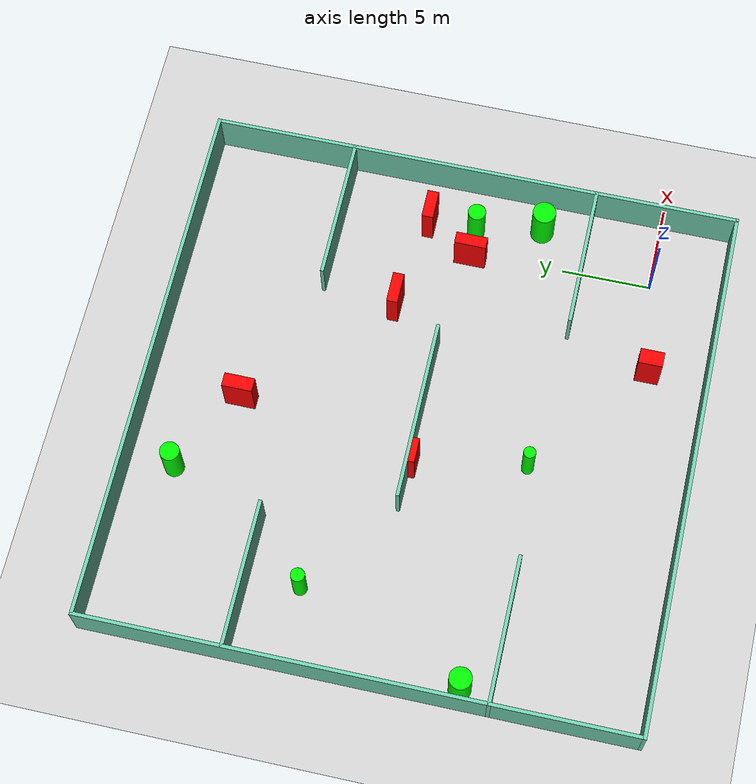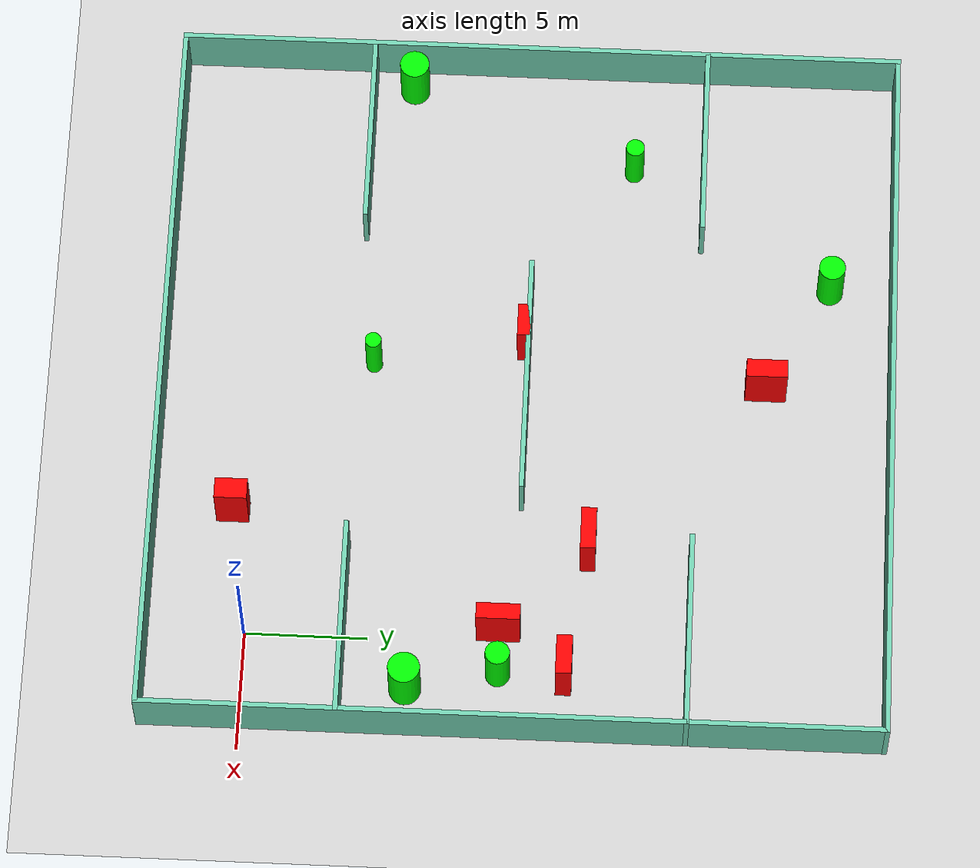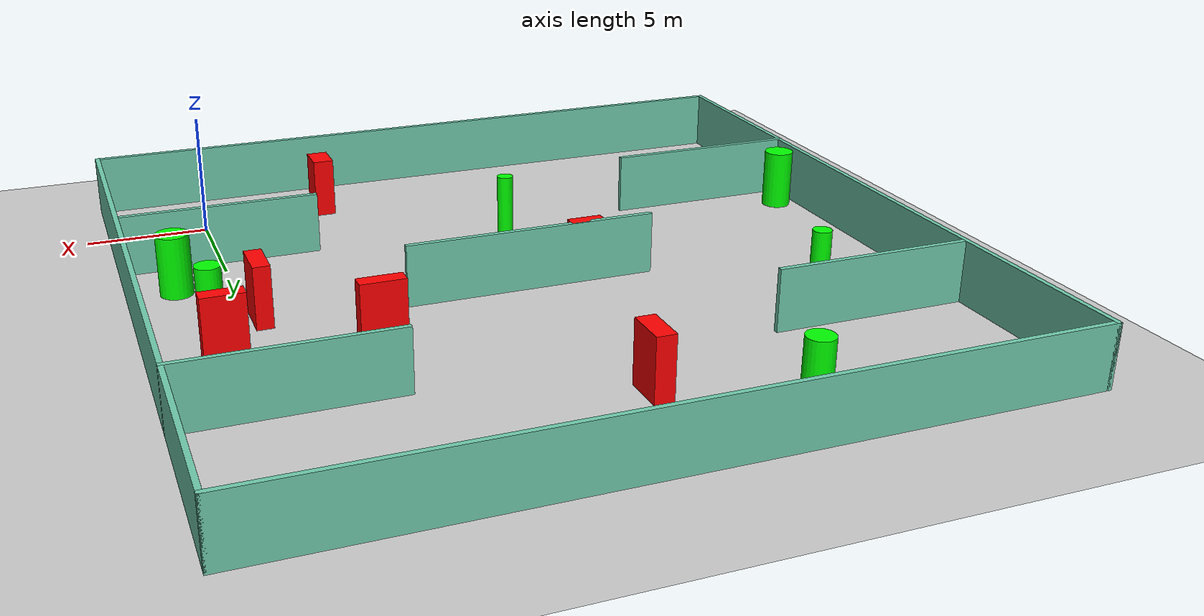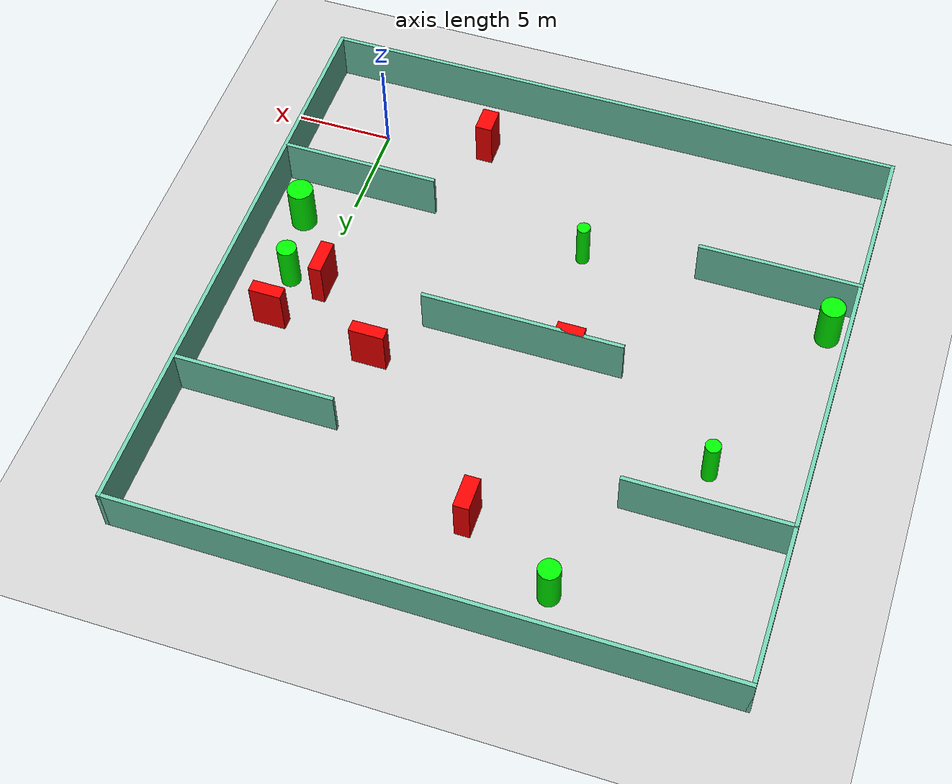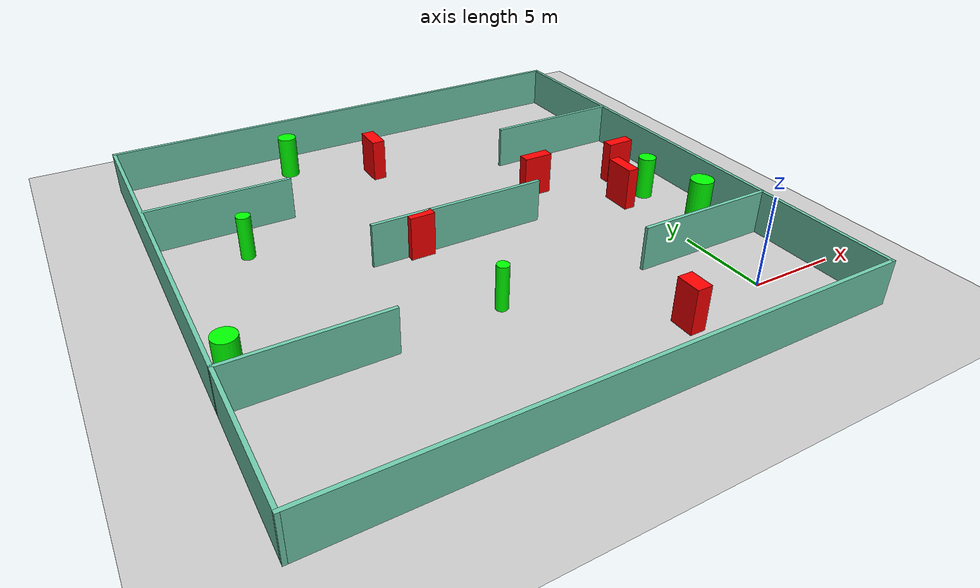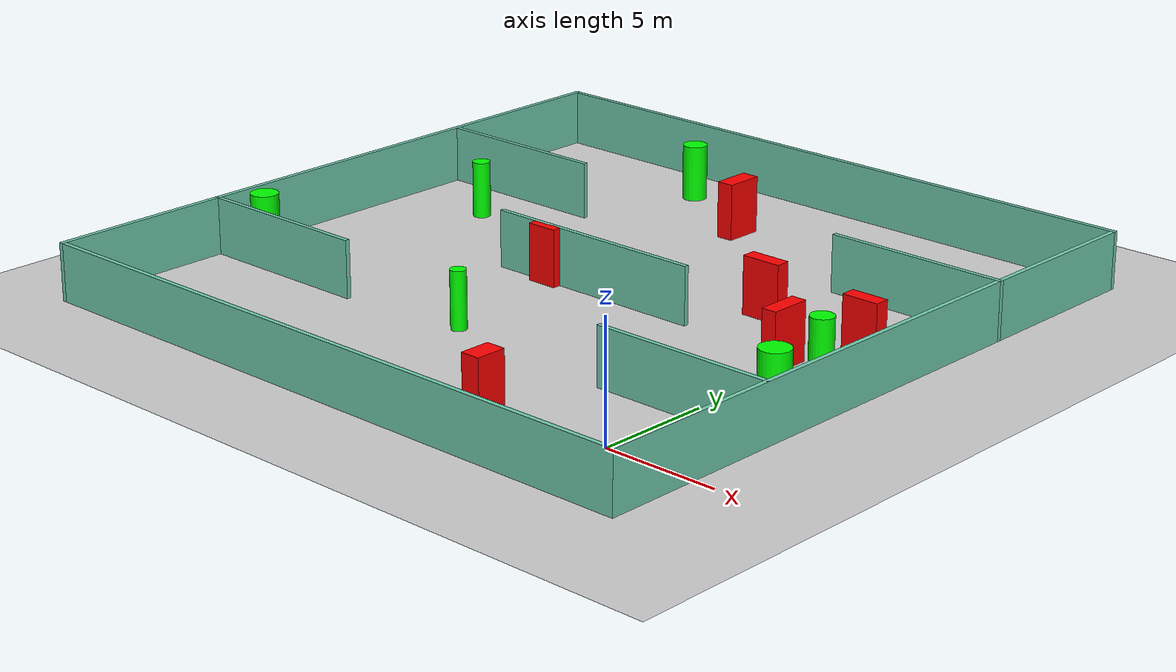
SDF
<sdf version="1.7">
 <world name="default">
  <light name="sun" type="directional">
   <pose>0 0 10 0 -0 0</pose>
   <diffuse>0.8 0.8 0.8 1</diffuse>
   <specular>0.2 0.2 0.2 1</specular>
   <attenuation>
    <range>1000</range>
    <constant>0.9</constant>
    <linear>0.01</linear>
    <quadratic>0.001</quadratic>
   </attenuation>
   <direction>-0.5 0.1 -0.9</direction>
   <spot><inner_angle>0</inner_angle><outer_angle>0</outer_angle><falloff>0</falloff></spot>
  </light>
  <model name="ground_plane">
   <static>1</static>
   <link name="link">
    <collision name="collision">
     <geometry><plane><normal>0 0 1</normal><size>100 100</size></plane></geometry>
     <surface>
      <contact><collide_bitmask>65535</collide_bitmask></contact>
      <friction><ode><mu>100</mu><mu2>50</mu2></ode></friction>
     </surface>
    </collision>
    <visual name="visual">
     <cast_shadows>0</cast_shadows>
     <geometry><plane><normal>0 0 1</normal><size>100 100</size></plane></geometry>
     <material>
      <script><uri>file://media/materials/scripts/gazebo.material</uri><name>Gazebo/Grey</name></script>
     </material>
    </visual>
   </link>
  </model>
  <gravity>0 0 -9.8</gravity>
  <magnetic_field>6e-06 2.3e-05 -4.2e-05</magnetic_field>
  <atmosphere type="adiabatic"/>
  <physics type="ode">
   <max_step_size>0.001</max_step_size>
   <real_time_factor>1</real_time_factor>
   <real_time_update_rate>1000</real_time_update_rate>
  </physics>
  <scene><ambient>0.4 0.4 0.4 1</ambient><background>0.7 0.7 0.7 1</background><shadows>1</shadows></scene>
  <spherical_coordinates>
   <surface_model>EARTH_WGS84</surface_model>
   <latitude_deg>0</latitude_deg>
   <longitude_deg>0</longitude_deg>
   <elevation>0</elevation>
   <heading_deg>0</heading_deg>
  </spherical_coordinates>
  <model name="my_base_walls">
   <link name="Wall_10">
    <collision name="Wall_10_Collision">
     <geometry><box><size>8.2 0.2 2.5</size></box></geometry>
     <pose>0 0 1.25 0 -0 0</pose>
    </collision>
    <visual name="Wall_10_Visual">
     <pose>0 0 1.25 0 -0 0</pose>
     <geometry><box><size>8.2 0.2 2.5</size></box></geometry>
     <material>
      <script><uri>file://media/materials/scripts/gazebo.material</uri><name>Gazebo/Grey</name></script>
      <ambient>0.435294 0.796078 0.67451 1</ambient>
     </material>
     <meta><layer>0</layer></meta>
    </visual>
    <pose>-11 -7 0 0 -0 0</pose>
   </link>
   <link name="Wall_12">
    <collision name="Wall_12_Collision">
     <geometry><box><size>8.2 0.2 2.5</size></box></geometry>
     <pose>0 0 1.25 0 -0 0</pose>
    </collision>
    <visual name="Wall_12_Visual">
     <pose>0 0 1.25 0 -0 0</pose>
     <geometry><box><size>8.2 0.2 2.5</size></box></geometry>
     <material>
      <script><uri>file://media/materials/scripts/gazebo.material</uri><name>Gazebo/Grey</name></script>
      <ambient>0.435294 0.796078 0.67451 1</ambient>
     </material>
     <meta><layer>0</layer></meta>
    </visual>
    <pose>-11 7 0 0 -0 0</pose>
   </link>
   <link name="Wall_14">
    <collision name="Wall_14_Collision">
     <geometry><box><size>8.2 0.2 2.5</size></box></geometry>
     <pose>0 0 1.25 0 -0 0</pose>
    </collision>
    <visual name="Wall_14_Visual">
     <pose>0 0 1.25 0 -0 0</pose>
     <geometry><box><size>8.2 0.2 2.5</size></box></geometry>
     <material>
      <script><uri>file://media/materials/scripts/gazebo.material</uri><name>Gazebo/Grey</name></script>
      <ambient>0.435294 0.796078 0.67451 1</ambient>
     </material>
     <meta><layer>0</layer></meta>
    </visual>
    <pose>11 7 0 0 -0 3.14159</pose>
   </link>
   <link name="Wall_16">
    <collision name="Wall_16_Collision">
     <geometry><box><size>10.2 0.2 2.5</size></box></geometry>
     <pose>0 0 1.25 0 -0 0</pose>
    </collision>
    <visual name="Wall_16_Visual">
     <pose>0 0 1.25 0 -0 0</pose>
     <geometry><box><size>10.2 0.2 2.5</size></box></geometry>
     <material>
      <script><uri>file://media/materials/scripts/gazebo.material</uri><name>Gazebo/Grey</name></script>
      <ambient>0.435294 0.796078 0.67451 1</ambient>
     </material>
     <meta><layer>0</layer></meta>
    </visual>
    <pose>0 0 0 0 -0 3.14159</pose>
   </link>
   <link name="Wall_2">
    <collision name="Wall_2_Collision">
     <geometry><box><size>30.2 0.2 2.5</size></box></geometry>
     <pose>0 0 1.25 0 -0 0</pose>
    </collision>
    <visual name="Wall_2_Visual">
     <pose>0 0 1.25 0 -0 0</pose>
     <geometry><box><size>30.2 0.2 2.5</size></box></geometry>
     <material>
      <script><uri>file://media/materials/scripts/gazebo.material</uri><name>Gazebo/Grey</name></script>
      <ambient>0.435294 0.796078 0.67451 1</ambient>
     </material>
     <meta><layer>0</layer></meta>
    </visual>
    <pose>0 -15 0 0 -0 3.14159</pose>
   </link>
   <link name="Wall_3">
    <collision name="Wall_3_Collision">
     <geometry><box><size>30.2 0.2 2.5</size></box></geometry>
     <pose>0 0 1.25 0 -0 0</pose>
    </collision>
    <visual name="Wall_3_Visual">
     <pose>0 0 1.25 0 -0 0</pose>
     <geometry><box><size>30.2 0.2 2.5</size></box></geometry>
     <material>
      <script><uri>file://media/materials/scripts/gazebo.material</uri><name>Gazebo/Grey</name></script>
      <ambient>0.435294 0.796078 0.67451 1</ambient>
     </material>
     <meta><layer>0</layer></meta>
    </visual>
    <pose>-15 0 0 0 -0 1.5708</pose>
   </link>
   <link name="Wall_4">
    <collision name="Wall_4_Collision">
     <geometry><box><size>30.2 0.2 2.5</size></box></geometry>
     <pose>0 0 1.25 0 -0 0</pose>
    </collision>
    <visual name="Wall_4_Visual">
     <pose>0 0 1.25 0 -0 0</pose>
     <geometry><box><size>30.2 0.2 2.5</size></box></geometry>
     <material>
      <script><uri>file://media/materials/scripts/gazebo.material</uri><name>Gazebo/Grey</name></script>
      <ambient>0.435294 0.796078 0.67451 1</ambient>
     </material>
     <meta><layer>0</layer></meta>
    </visual>
    <pose>0 15 0 0 -0 0</pose>
   </link>
   <link name="Wall_6">
    <collision name="Wall_6_Collision">
     <geometry><box><size>30.2 0.2 2.5</size></box></geometry>
     <pose>0 0 1.25 0 -0 0</pose>
    </collision>
    <visual name="Wall_6_Visual">
     <pose>0 0 1.25 0 -0 0</pose>
     <geometry><box><size>30.2 0.2 2.5</size></box></geometry>
     <material>
      <script><uri>file://media/materials/scripts/gazebo.material</uri><name>Gazebo/Grey</name></script>
      <ambient>0.435294 0.796078 0.67451 1</ambient>
     </material>
     <meta><layer>0</layer></meta>
    </visual>
    <pose>15 0 0 0 -0 1.5708</pose>
   </link>
   <link name="Wall_8">
    <collision name="Wall_8_Collision">
     <geometry><box><size>8.2 0.2 2.5</size></box></geometry>
     <pose>0 0 1.25 0 -0 0</pose>
    </collision>
    <visual name="Wall_8_Visual">
     <pose>0 0 1.25 0 -0 0</pose>
     <geometry><box><size>8.2 0.2 2.5</size></box></geometry>
     <material>
      <script><uri>file://media/materials/scripts/gazebo.material</uri><name>Gazebo/Grey</name></script>
      <ambient>0.435294 0.796078 0.67451 1</ambient>
     </material>
     <meta><layer>0</layer></meta>
    </visual>
    <pose>11 -7 0 0 -0 3.14159</pose>
   </link>
   <static>1</static>
   <pose>-11 11 0 0 -0 0</pose>
  </model>
  <model name="cylinder1">
   <static>1</static>
   <link name="link">
    <inertial>
     <mass>1</mass>
     <inertia><ixx>0.5</ixx><ixy>0</ixy><ixz>0</ixz><iyy>0.5</iyy><iyz>0</iyz><izz>1</izz></inertia>
    </inertial>
    <collision name="collision">
     <geometry><cylinder><radius>0.6545106567901853</radius><length>2.5</length></cylinder></geometry>
    </collision>
    <visual name="visual">
     <geometry><cylinder><radius>0.6545106567901853</radius><length>2.5</length></cylinder></geometry>
     <material>
      <ambient>0 1 0 1</ambient>
      <diffuse>0 1 0 1</diffuse>
      <specular>0.1 0.1 0.1 1</specular>
      <emissive>0 0 0 0</emissive>
     </material>
    </visual>
   </link>
   <pose>2.1588198295782135 6.639163818101654 1.25 0 0 0</pose>
  </model>
  <model name="cylinder2">
   <static>1</static>
   <link name="link">
    <inertial>
     <mass>1</mass>
     <inertia><ixx>0.5</ixx><ixy>0</ixy><ixz>0</ixz><iyy>0.5</iyy><iyz>0</iyz><izz>1</izz></inertia>
    </inertial>
    <collision name="collision">
     <geometry><cylinder><radius>0.33607442708931295</radius><length>2.5</length></cylinder></geometry>
    </collision>
    <visual name="visual">
     <geometry><cylinder><radius>0.33607442708931295</radius><length>2.5</length></cylinder></geometry>
     <material>
      <ambient>0 1 0 1</ambient>
      <diffuse>0 1 0 1</diffuse>
      <specular>0.1 0.1 0.1 1</specular>
      <emissive>0 0 0 0</emissive>
     </material>
    </visual>
   </link>
   <pose>-12.18341538969988 4.643074567355049 1.25 0 0 0</pose>
  </model>
  <model name="cylinder3">
   <static>1</static>
   <link name="link">
    <inertial>
     <mass>1</mass>
     <inertia><ixx>0.5</ixx><ixy>0</ixy><ixz>0</ixz><iyy>0.5</iyy><iyz>0</iyz><izz>1</izz></inertia>
    </inertial>
    <collision name="collision">
     <geometry><cylinder><radius>0.49963659909541225</radius><length>2.5</length></cylinder></geometry>
    </collision>
    <visual name="visual">
     <geometry><cylinder><radius>0.49963659909541225</radius><length>2.5</length></cylinder></geometry>
     <material>
      <ambient>0 1 0 1</ambient>
      <diffuse>0 1 0 1</diffuse>
      <specular>0.1 0.1 0.1 1</specular>
      <emissive>0 0 0 0</emissive>
     </material>
    </visual>
   </link>
   <pose>1.3755090280128393 10.352570247148769 1.25 0 0 0</pose>
  </model>
  <model name="cylinder4">
   <static>1</static>
   <link name="link">
    <inertial>
     <mass>1</mass>
     <inertia><ixx>0.5</ixx><ixy>0</ixy><ixz>0</ixz><iyy>0.5</iyy><iyz>0</iyz><izz>1</izz></inertia>
    </inertial>
    <collision name="collision">
     <geometry><cylinder><radius>0.38535326269873726</radius><length>2.5</length></cylinder></geometry>
    </collision>
    <visual name="visual">
     <geometry><cylinder><radius>0.38535326269873726</radius><length>2.5</length></cylinder></geometry>
     <material>
      <ambient>0 1 0 1</ambient>
      <diffuse>0 1 0 1</diffuse>
      <specular>0.1 0.1 0.1 1</specular>
      <emissive>0 0 0 0</emissive>
     </material>
    </visual>
   </link>
   <pose>-21.475483215318945 15.09854853922824 1.25 0 0 0</pose>
  </model>
  <model name="cylinder5">
   <static>1</static>
   <link name="link">
    <inertial>
     <mass>1</mass>
     <inertia><ixx>0.5</ixx><ixy>0</ixy><ixz>0</ixz><iyy>0.5</iyy><iyz>0</iyz><izz>1</izz></inertia>
    </inertial>
    <collision name="collision">
     <geometry><cylinder><radius>0.5412995858973938</radius><length>2.5</length></cylinder></geometry>
    </collision>
    <visual name="visual">
     <geometry><cylinder><radius>0.5412995858973938</radius><length>2.5</length></cylinder></geometry>
     <material>
      <ambient>0 1 0 1</ambient>
      <diffuse>0 1 0 1</diffuse>
      <specular>0.1 0.1 0.1 1</specular>
      <emissive>0 0 0 0</emissive>
     </material>
    </visual>
   </link>
   <pose>-16.268847813645056 23.422229080218315 1.25 0 0 0</pose>
  </model>
  <model name="cylinder6">
   <static>1</static>
   <link name="link">
    <inertial>
     <mass>1</mass>
     <inertia><ixx>0.5</ixx><ixy>0</ixy><ixz>0</ixz><iyy>0.5</iyy><iyz>0</iyz><izz>1</izz></inertia>
    </inertial>
    <collision name="collision">
     <geometry><cylinder><radius>0.6127022253190677</radius><length>2.5</length></cylinder></geometry>
    </collision>
    <visual name="visual">
     <geometry><cylinder><radius>0.6127022253190677</radius><length>2.5</length></cylinder></geometry>
     <material>
      <ambient>0 1 0 1</ambient>
      <diffuse>0 1 0 1</diffuse>
      <specular>0.1 0.1 0.1 1</specular>
      <emissive>0 0 0 0</emissive>
     </material>
    </visual>
   </link>
   <pose>-25.016231026499067 5.6915372192009315 1.25 0 0 0</pose>
  </model>
  <model name="box1">
   <static>1</static>
   <link name="link">
    <inertial>
     <mass>1</mass>
     <inertia><ixx>0.083</ixx><ixy>0</ixy><ixz>0</ixz><iyy>0.083</iyy><iyz>0</iyz><izz>0.083</izz></inertia>
    </inertial>
    <collision name="collision">
     <geometry><box><size>1.394252059540293 0.5289593589332265 2.5</size></box></geometry>
    </collision>
    <visual name="visual">
     <geometry><box><size>1.394252059540293 0.5289593589332265 2.5</size></box></geometry>
     <material>
      <ambient>1 0 0 1</ambient>
      <diffuse>1 0 0 1</diffuse>
      <specular>0.1 0.1 0.1 1</specular>
      <emissive>0 0 0 0</emissive>
     </material>
    </visual>
    <sensor name="my_contact" type="contact">
     <contact><collision>box_collision</collision><topic>__default_topic__</topic></contact>
    </sensor>
   </link>
   <pose>-13.377822146649267 10.799514216408127 1.25 0 0 0</pose>
  </model>
  <model name="box2">
   <static>1</static>
   <link name="link">
    <inertial>
     <mass>1</mass>
     <inertia><ixx>0.083</ixx><ixy>0</ixy><ixz>0</ixz><iyy>0.083</iyy><iyz>0</iyz><izz>0.083</izz></inertia>
    </inertial>
    <collision name="collision">
     <geometry><box><size>1.7698045452798696 0.6285763598145347 2.5</size></box></geometry>
    </collision>
    <visual name="visual">
     <geometry><box><size>1.7698045452798696 0.6285763598145347 2.5</size></box></geometry>
     <material>
      <ambient>1 0 0 1</ambient>
      <diffuse>1 0 0 1</diffuse>
      <specular>0.1 0.1 0.1 1</specular>
      <emissive>0 0 0 0</emissive>
     </material>
    </visual>
    <sensor name="my_contact" type="contact">
     <contact><collision>box_collision</collision><topic>__default_topic__</topic></contact>
    </sensor>
   </link>
   <pose>-4.206796961854057 13.796745288679347 1.25 0 0 0</pose>
  </model>
  <model name="box3">
   <static>1</static>
   <link name="link">
    <inertial>
     <mass>1</mass>
     <inertia><ixx>0.083</ixx><ixy>0</ixy><ixz>0</ixz><iyy>0.083</iyy><iyz>0</iyz><izz>0.083</izz></inertia>
    </inertial>
    <collision name="collision">
     <geometry><box><size>0.861525716647187 1.3320354400345435 2.5</size></box></geometry>
    </collision>
    <visual name="visual">
     <geometry><box><size>0.861525716647187 1.3320354400345435 2.5</size></box></geometry>
     <material>
      <ambient>1 0 0 1</ambient>
      <diffuse>1 0 0 1</diffuse>
      <specular>0.1 0.1 0.1 1</specular>
      <emissive>0 0 0 0</emissive>
     </material>
    </visual>
    <sensor name="my_contact" type="contact">
     <contact><collision>box_collision</collision><topic>__default_topic__</topic></contact>
    </sensor>
   </link>
   <pose>-5.329194709141223 -0.7698210883094463 1.25 0 0 0</pose>
  </model>
  <model name="box4">
   <static>1</static>
   <link name="link">
    <inertial>
     <mass>1</mass>
     <inertia><ixx>0.083</ixx><ixy>0</ixy><ixz>0</ixz><iyy>0.083</iyy><iyz>0</iyz><izz>0.083</izz></inertia>
    </inertial>
    <collision name="collision">
     <geometry><box><size>0.6705390413377756 1.7889557003575538 2.5</size></box></geometry>
    </collision>
    <visual name="visual">
     <geometry><box><size>0.6705390413377756 1.7889557003575538 2.5</size></box></geometry>
     <material>
      <ambient>1 0 0 1</ambient>
      <diffuse>1 0 0 1</diffuse>
      <specular>0.1 0.1 0.1 1</specular>
      <emissive>0 0 0 0</emissive>
     </material>
    </visual>
    <sensor name="my_contact" type="contact">
     <contact><collision>box_collision</collision><topic>__default_topic__</topic></contact>
    </sensor>
   </link>
   <pose>-0.4293220218698721 10.30529194345771 1.25 0 0 0</pose>
  </model>
  <model name="box5">
   <static>1</static>
   <link name="link">
    <inertial>
     <mass>1</mass>
     <inertia><ixx>0.083</ixx><ixy>0</ixy><ixz>0</ixz><iyy>0.083</iyy><iyz>0</iyz><izz>0.083</izz></inertia>
    </inertial>
    <collision name="collision">
     <geometry><box><size>0.7684116602059691 1.6907404187650108 2.5</size></box></geometry>
    </collision>
    <visual name="visual">
     <geometry><box><size>0.7684116602059691 1.6907404187650108 2.5</size></box></geometry>
     <material>
      <ambient>1 0 0 1</ambient>
      <diffuse>1 0 0 1</diffuse>
      <specular>0.1 0.1 0.1 1</specular>
      <emissive>0 0 0 0</emissive>
     </material>
    </visual>
    <sensor name="my_contact" type="contact">
     <contact><collision>box_collision</collision><topic>__default_topic__</topic></contact>
    </sensor>
   </link>
   <pose>-11.597979880914792 20.846445281976898 1.25 0 0 0</pose>
  </model>
  <model name="box6">
   <static>1</static>
   <link name="link">
    <inertial>
     <mass>1</mass>
     <inertia><ixx>0.083</ixx><ixy>0</ixy><ixz>0</ixz><iyy>0.083</iyy><iyz>0</iyz><izz>0.083</izz></inertia>
    </inertial>
    <collision name="collision">
     <geometry><box><size>1.644811035707314 0.6469157402322153 2.5</size></box></geometry>
    </collision>
    <visual name="visual">
     <geometry><box><size>1.644811035707314 0.6469157402322153 2.5</size></box></geometry>
     <material>
      <ambient>1 0 0 1</ambient>
      <diffuse>1 0 0 1</diffuse>
      <specular>0.1 0.1 0.1 1</specular>
      <emissive>0 0 0 0</emissive>
     </material>
    </visual>
    <sensor name="my_contact" type="contact">
     <contact><collision>box_collision</collision><topic>__default_topic__</topic></contact>
    </sensor>
   </link>
   <pose>1.3127488903064588 13.021313361325 1.25 0 0 0</pose>
  </model>
 </world>
</sdf>
